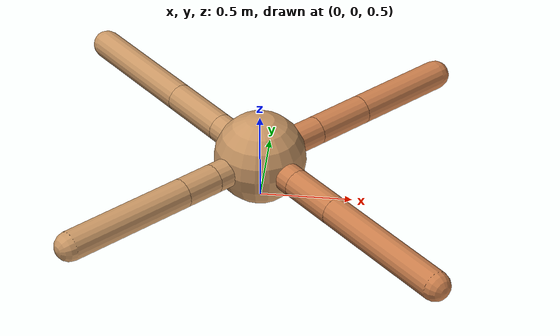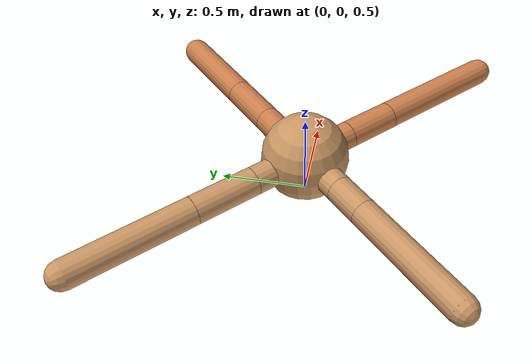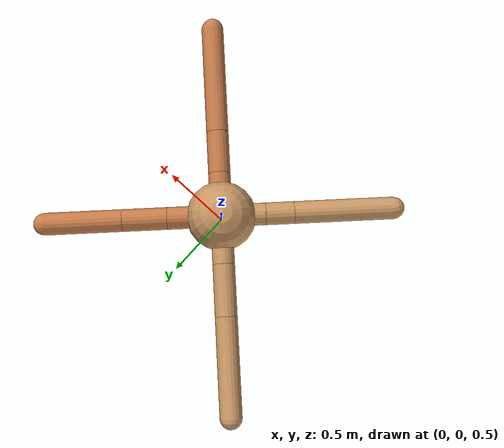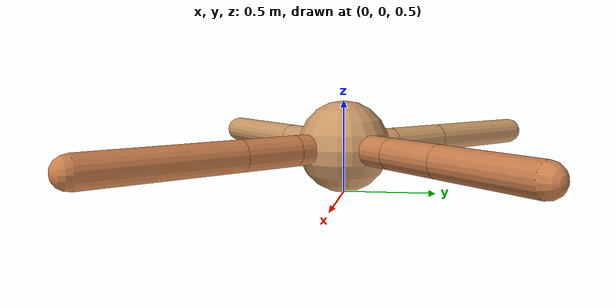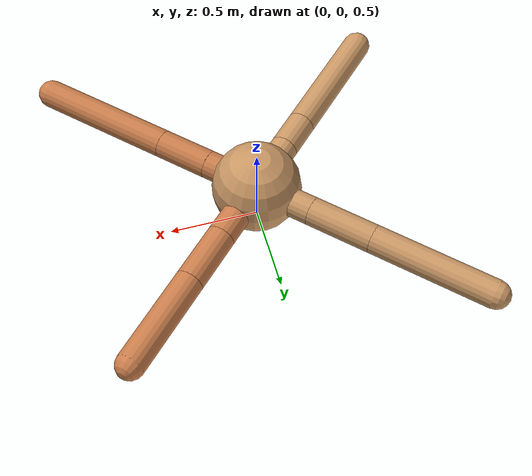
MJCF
<mujoco model="ant">
  <compiler angle="degree" coordinate="local" inertiafromgeom="true" />
  <option integrator="RK4" timestep="0.01" />
  <custom>
    <numeric data="0.0 0.0 0.55 1.0 0.0 0.0 0.0 0.0 1.0 0.0 -1.0 0.0 -1.0 0.0 1.0" name="init_qpos" />
  </custom>
  <default>
    <joint armature="1" damping="1" limited="true" />
    <geom conaffinity="0" condim="3" density="5.0" friction="1.5 0.1 0.1" margin="0.01" rgba="0.8 0.6 0.4 1" />
  </default>
  <worldbody>
    <body name="torso" pos="0 0 0.75">
      <geom name="torso_geom" pos="0 0 0" size="0.25" type="sphere" />

      <body name="front_left_leg" pos="0 0 0">
        <geom fromto="0.0 0.0 0.0 0.2737703406135776 0.2737703406135776 0.0" name="aux_1_geom" size="0.08" type="capsule" rgba=".8 .5 .3 1" />
        <body name="aux_1" pos="0.2737703406135776 0.2737703406135776 0.0">
          <joint axis="0 0 1" name="hip_1" pos="0.0 0.0 0.0" range="-40 40" type="hinge" />
          <geom fromto="0.0 0.0 0.0 0.226839368032131 0.226839368032131 0.0" name="left_leg_geom" size="0.08" type="capsule" rgba=".8 .5 .3 1" />
          <body pos="0.226839368032131 0.226839368032131 0.0" name="front_left_foot">
            <joint axis="-1 1 0" name="ankle_1" pos="0.0 0.0 0.0" range="30 100" type="hinge" />
            <geom fromto="0.0 0.0 0.0 0.39411978785828344 0.39411978785828344 0.0" name="left_ankle_geom" size="0.08" type="capsule" rgba=".8 .5 .3 1" />
          </body>
        </body>
      </body>
      <body name="front_right_leg" pos="0 0 0">
        <geom fromto="0.0 0.0 0.0 -0.24331745057922383 0.24331745057922383 0.0" name="aux_2_geom" size="0.08" type="capsule" />
        <body name="aux_2" pos="-0.24331745057922383 0.24331745057922383 0.0">
          <joint axis="0 0 1" name="hip_2" pos="0.0 0.0 0.0" range="-40 40" type="hinge" />
          <geom fromto="0.0 0.0 0.0 -0.2621249639949495 0.2621249639949495 0.0" name="right_leg_geom" size="0.08" type="capsule" />
          <body pos="-0.2621249639949495 0.2621249639949495 0.0" name="front_right_foot">
            <joint axis="1 1 0" name="ankle_2" pos="0.0 0.0 0.0" range="-100 -30" type="hinge" />
            <geom fromto="0.0 0.0 0.0 -0.49705900079350035 0.49705900079350035 0.0" name="right_ankle_geom" size="0.08" type="capsule" />
          </body>
        </body>
      </body>
      <body name="left_back_leg" pos="0 0 0">
        <geom fromto="0.0 0.0 0.0 -0.22386565206399706 -0.22386565206399706 0.0" name="aux_3_geom" size="0.08" type="capsule" />
        <body name="aux_3" pos="-0.22386565206399706 -0.22386565206399706 0.0">
          <joint axis="0 0 1" name="hip_3" pos="0.0 0.0 0.0" range="-40 40" type="hinge" />
          <geom fromto="0.0 0.0 0.0 -0.143555954720477 -0.143555954720477 0.0" name="back_leg_geom" size="0.08" type="capsule" />
          <body pos="-0.143555954720477 -0.143555954720477 0.0" name="left_back_foot">
            <joint axis="-1 1 0" name="ankle_3" pos="0.0 0.0 0.0" range="-100 -30" type="hinge" />
            <geom fromto="0.0 0.0 0.0 -0.503832499330194 -0.503832499330194 0.0" name="third_ankle_geom" size="0.08" type="capsule" />
          </body>
        </body>
      </body>
      <body name="right_back_leg" pos="0 0 0">
        <geom fromto="0.0 0.0 0.0 0.21945669117103642 -0.21945669117103642 0.0" name="aux_4_geom" size="0.08" type="capsule" rgba=".8 .5 .3 1" />
        <body name="aux_4" pos="0.21945669117103642 -0.21945669117103642 0.0">
          <joint axis="0 0 1" name="hip_4" pos="0.0 0.0 0.0" range="-40 40" type="hinge" />
          <geom fromto="0.0 0.0 0.0 0.2140109810414364 -0.2140109810414364 0.0" name="rightback_leg_geom" size="0.08" type="capsule" rgba=".8 .5 .3 1" />
          <body pos="0.2140109810414364 -0.2140109810414364 0.0" name="right_back_foot">
            <joint axis="1 1 0" name="ankle_4" pos="0.0 0.0 0.0" range="30 100" type="hinge" />
            <geom fromto="0.0 0.0 0.0 0.5446347236208136 -0.5446347236208136 0.0" name="fourth_ankle_geom" size="0.08" type="capsule" rgba=".8 .5 .3 1" />
          </body>
        </body>
      </body>
    </body>
  </worldbody>
  <actuator>
    <motor ctrllimited="true" ctrlrange="-1.0 1.0" joint="hip_4" gear="150" />
    <motor ctrllimited="true" ctrlrange="-1.0 1.0" joint="ankle_4" gear="150" />
    <motor ctrllimited="true" ctrlrange="-1.0 1.0" joint="hip_1" gear="150" />
    <motor ctrllimited="true" ctrlrange="-1.0 1.0" joint="ankle_1" gear="150" />
    <motor ctrllimited="true" ctrlrange="-1.0 1.0" joint="hip_2" gear="150" />
    <motor ctrllimited="true" ctrlrange="-1.0 1.0" joint="ankle_2" gear="150" />
    <motor ctrllimited="true" ctrlrange="-1.0 1.0" joint="hip_3" gear="150" />
    <motor ctrllimited="true" ctrlrange="-1.0 1.0" joint="ankle_3" gear="150" />
  </actuator>
</mujoco>
